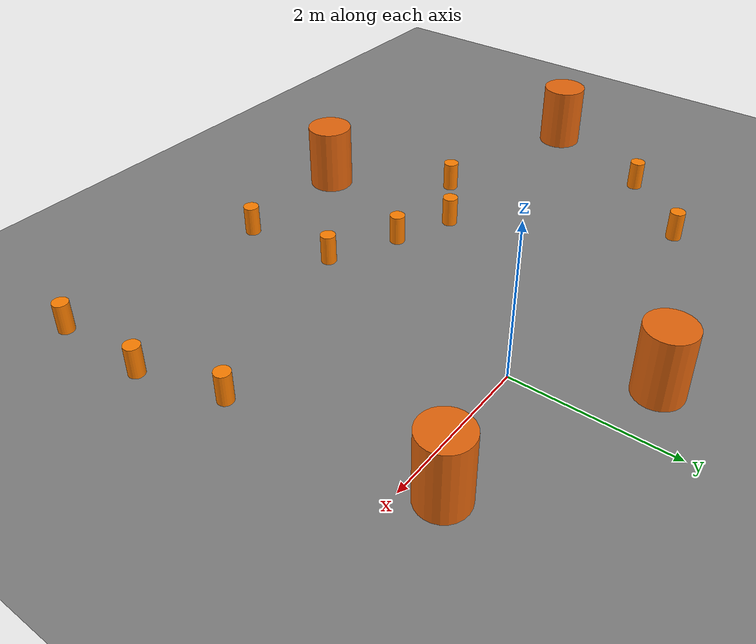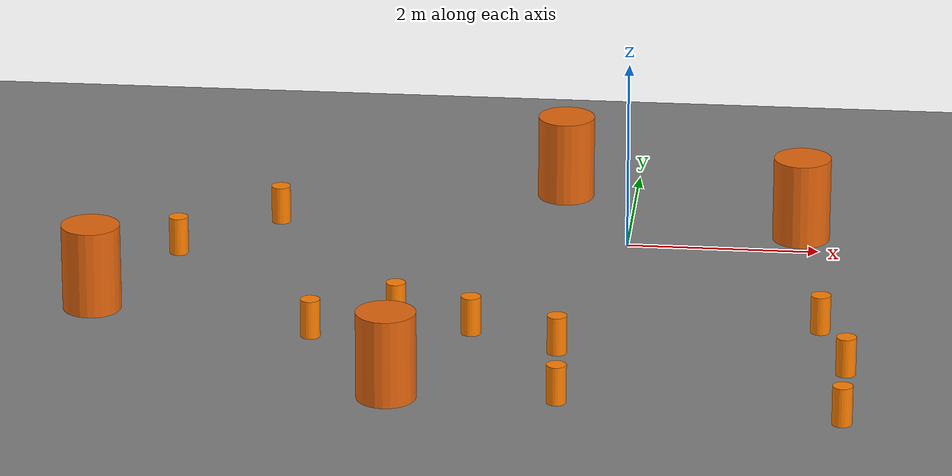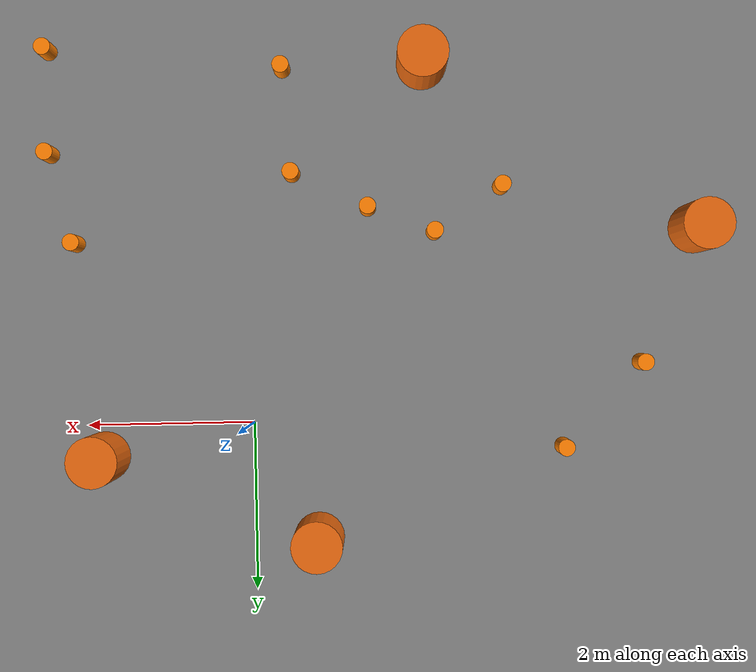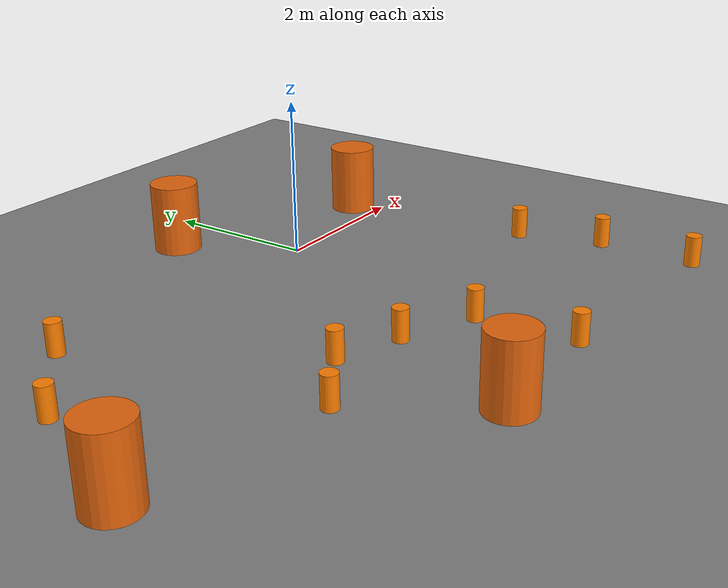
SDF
<?xml version="1.0"?>
<sdf version="1.8">
  <world name="default">

    <!-- Systems required by Gazebo Harmonic. Without these nothing simulates or renders. -->
    <plugin filename="gz-sim-physics-system" name="gz::sim::systems::Physics"/>
    <plugin filename="gz-sim-user-commands-system" name="gz::sim::systems::UserCommands"/>
    <plugin filename="gz-sim-scene-broadcaster-system" name="gz::sim::systems::SceneBroadcaster"/>
    <plugin filename="gz-sim-sensors-system" name="gz::sim::systems::Sensors">
      <render_engine>ogre2</render_engine>
    </plugin>

    <physics name="1ms" type="ignored">
      <max_step_size>0.001</max_step_size>
      <real_time_factor>1.0</real_time_factor>
    </physics>

    <gravity>0 0 -9.8</gravity>

    <scene>
      <ambient>0.4 0.4 0.4 1</ambient>
      <background>0.7 0.7 0.7 1</background>
      <shadows>true</shadows>
    </scene>

    <light name="sun" type="directional">
      <cast_shadows>true</cast_shadows>
      <pose>0 0 10 0 0 0</pose>
      <diffuse>0.8 0.8 0.8 1</diffuse>
      <specular>0.2 0.2 0.2 1</specular>
      <direction>-0.5 0.1 -0.9</direction>
    </light>

    <model name="ground_plane">
      <static>true</static>
      <link name="link">
        <collision name="collision">
          <geometry><plane><normal>0 0 1</normal><size>100 100</size></plane></geometry>
          <surface>
            <friction>
              <ode><mu>100</mu><mu2>50</mu2></ode>
            </friction>
          </surface>
        </collision>
        <visual name="visual">
          <cast_shadows>false</cast_shadows>
          <geometry><plane><normal>0 0 1</normal><size>100 100</size></plane></geometry>
          <material>
            <ambient>0.5 0.5 0.5 1</ambient>
            <diffuse>0.5 0.5 0.5 1</diffuse>
          </material>
        </visual>
      </link>
    </model>

    <model name="barrel_0">
      <static>true</static>
      <pose>-0.756237 1.39226 0.45 0 0 0</pose>
      <link name="link">
        <collision name="collision">
          <geometry><cylinder><radius>0.3</radius><length>0.9</length></cylinder></geometry>
        </collision>
        <visual name="visual">
          <geometry><cylinder><radius>0.3</radius><length>0.9</length></cylinder></geometry>
          <material>
            <ambient>0.9 0.4 0.05 1</ambient>
            <diffuse>0.9 0.4 0.05 1</diffuse>
          </material>
        </visual>
      </link>
    </model>
    <model name="barrel_1">
      <static>true</static>
      <pose>1.80022 0.377178 0.45 0 0 0</pose>
      <link name="link">
        <collision name="collision">
          <geometry><cylinder><radius>0.3</radius><length>0.9</length></cylinder></geometry>
        </collision>
        <visual name="visual">
          <geometry><cylinder><radius>0.3</radius><length>0.9</length></cylinder></geometry>
          <material>
            <ambient>0.9 0.4 0.05 1</ambient>
            <diffuse>0.9 0.4 0.05 1</diffuse>
          </material>
        </visual>
      </link>
    </model>
    <model name="barrel_2">
      <static>true</static>
      <pose>-5.3108 -2.23708 0.45 0 0 0</pose>
      <link name="link">
        <collision name="collision">
          <geometry><cylinder><radius>0.3</radius><length>0.9</length></cylinder></geometry>
        </collision>
        <visual name="visual">
          <geometry><cylinder><radius>0.3</radius><length>0.9</length></cylinder></geometry>
          <material>
            <ambient>0.9 0.4 0.05 1</ambient>
            <diffuse>0.9 0.4 0.05 1</diffuse>
          </material>
        </visual>
      </link>
    </model>
    <model name="barrel_3">
      <static>true</static>
      <pose>-2.07692 -4.26198 0.45 0 0 0</pose>
      <link name="link">
        <collision name="collision">
          <geometry><cylinder><radius>0.3</radius><length>0.9</length></cylinder></geometry>
        </collision>
        <visual name="visual">
          <geometry><cylinder><radius>0.3</radius><length>0.9</length></cylinder></geometry>
          <material>
            <ambient>0.9 0.4 0.05 1</ambient>
            <diffuse>0.9 0.4 0.05 1</diffuse>
          </material>
        </visual>
      </link>
    </model>
    <model name="cone_0">
      <static>true</static>
      <pose>-2.19745 -2.25046 0.2 0 0 0</pose>
      <link name="link">
        <collision name="collision">
          <geometry><cylinder><radius>0.1</radius><length>0.4</length></cylinder></geometry>
        </collision>
        <visual name="visual">
          <geometry><cylinder><radius>0.1</radius><length>0.4</length></cylinder></geometry>
          <material>
            <ambient>1.0 0.5 0.0 1</ambient>
            <diffuse>1.0 0.5 0.0 1</diffuse>
          </material>
        </visual>
      </link>
    </model>
    <model name="cone_1">
      <static>true</static>
      <pose>-1.40494 -2.55135 0.2 0 0 0</pose>
      <link name="link">
        <collision name="collision">
          <geometry><cylinder><radius>0.1</radius><length>0.4</length></cylinder></geometry>
        </collision>
        <visual name="visual">
          <geometry><cylinder><radius>0.1</radius><length>0.4</length></cylinder></geometry>
          <material>
            <ambient>1.0 0.5 0.0 1</ambient>
            <diffuse>1.0 0.5 0.0 1</diffuse>
          </material>
        </visual>
      </link>
    </model>
    <model name="cone_2">
      <static>true</static>
      <pose>-0.501986 -2.9745 0.2 0 0 0</pose>
      <link name="link">
        <collision name="collision">
          <geometry><cylinder><radius>0.1</radius><length>0.4</length></cylinder></geometry>
        </collision>
        <visual name="visual">
          <geometry><cylinder><radius>0.1</radius><length>0.4</length></cylinder></geometry>
          <material>
            <ambient>1.0 0.5 0.0 1</ambient>
            <diffuse>1.0 0.5 0.0 1</diffuse>
          </material>
        </visual>
      </link>
    </model>
    <model name="cone_3">
      <static>true</static>
      <pose>2.09724 -2.18232 0.2 0 0 0</pose>
      <link name="link">
        <collision name="collision">
          <geometry><cylinder><radius>0.1</radius><length>0.4</length></cylinder></geometry>
        </collision>
        <visual name="visual">
          <geometry><cylinder><radius>0.1</radius><length>0.4</length></cylinder></geometry>
          <material>
            <ambient>1.0 0.5 0.0 1</ambient>
            <diffuse>1.0 0.5 0.0 1</diffuse>
          </material>
        </visual>
      </link>
    </model>
    <model name="cone_4">
      <static>true</static>
      <pose>-3.69879 0.345038 0.2 0 0 0</pose>
      <link name="link">
        <collision name="collision">
          <geometry><cylinder><radius>0.1</radius><length>0.4</length></cylinder></geometry>
        </collision>
        <visual name="visual">
          <geometry><cylinder><radius>0.1</radius><length>0.4</length></cylinder></geometry>
          <material>
            <ambient>1.0 0.5 0.0 1</ambient>
            <diffuse>1.0 0.5 0.0 1</diffuse>
          </material>
        </visual>
      </link>
    </model>
    <model name="cone_5">
      <static>true</static>
      <pose>-0.406438 -4.23374 0.2 0 0 0</pose>
      <link name="link">
        <collision name="collision">
          <geometry><cylinder><radius>0.1</radius><length>0.4</length></cylinder></geometry>
        </collision>
        <visual name="visual">
          <geometry><cylinder><radius>0.1</radius><length>0.4</length></cylinder></geometry>
          <material>
            <ambient>1.0 0.5 0.0 1</ambient>
            <diffuse>1.0 0.5 0.0 1</diffuse>
          </material>
        </visual>
      </link>
    </model>
    <model name="cone_6">
      <static>true</static>
      <pose>2.38815 -3.2576 0.2 0 0 0</pose>
      <link name="link">
        <collision name="collision">
          <geometry><cylinder><radius>0.1</radius><length>0.4</length></cylinder></geometry>
        </collision>
        <visual name="visual">
          <geometry><cylinder><radius>0.1</radius><length>0.4</length></cylinder></geometry>
          <material>
            <ambient>1.0 0.5 0.0 1</ambient>
            <diffuse>1.0 0.5 0.0 1</diffuse>
          </material>
        </visual>
      </link>
    </model>
    <model name="cone_7">
      <static>true</static>
      <pose>2.39316 -4.49605 0.2 0 0 0</pose>
      <link name="link">
        <collision name="collision">
          <geometry><cylinder><radius>0.1</radius><length>0.4</length></cylinder></geometry>
        </collision>
        <visual name="visual">
          <geometry><cylinder><radius>0.1</radius><length>0.4</length></cylinder></geometry>
          <material>
            <ambient>1.0 0.5 0.0 1</ambient>
            <diffuse>1.0 0.5 0.0 1</diffuse>
          </material>
        </visual>
      </link>
    </model>
    <model name="cone_8">
      <static>true</static>
      <pose>-3.00495 -2.78053 0.2 0 0 0</pose>
      <link name="link">
        <collision name="collision">
          <geometry><cylinder><radius>0.1</radius><length>0.4</length></cylinder></geometry>
        </collision>
        <visual name="visual">
          <geometry><cylinder><radius>0.1</radius><length>0.4</length></cylinder></geometry>
          <material>
            <ambient>1.0 0.5 0.0 1</ambient>
            <diffuse>1.0 0.5 0.0 1</diffuse>
          </material>
        </visual>
      </link>
    </model>
    <model name="cone_9">
      <static>true</static>
      <pose>-4.64786 -0.646522 0.2 0 0 0</pose>
      <link name="link">
        <collision name="collision">
          <geometry><cylinder><radius>0.1</radius><length>0.4</length></cylinder></geometry>
        </collision>
        <visual name="visual">
          <geometry><cylinder><radius>0.1</radius><length>0.4</length></cylinder></geometry>
          <material>
            <ambient>1.0 0.5 0.0 1</ambient>
            <diffuse>1.0 0.5 0.0 1</diffuse>
          </material>
        </visual>
      </link>
    </model>

  </world>
</sdf>
